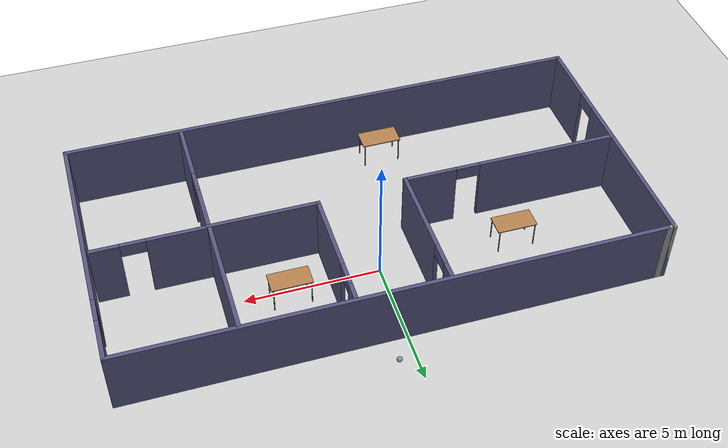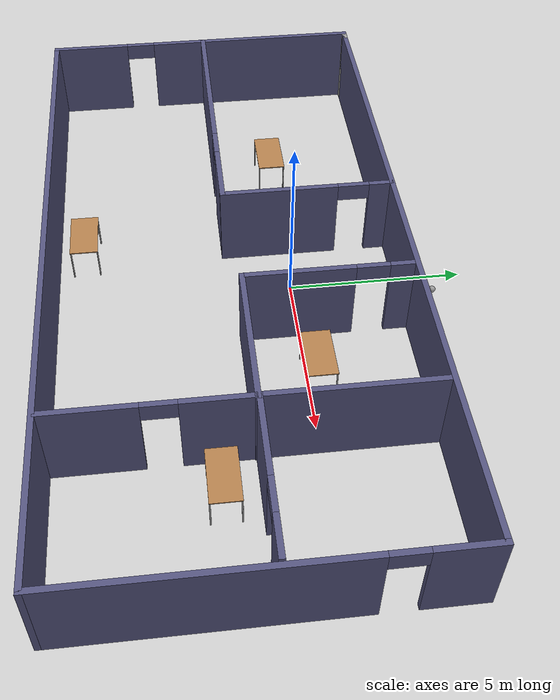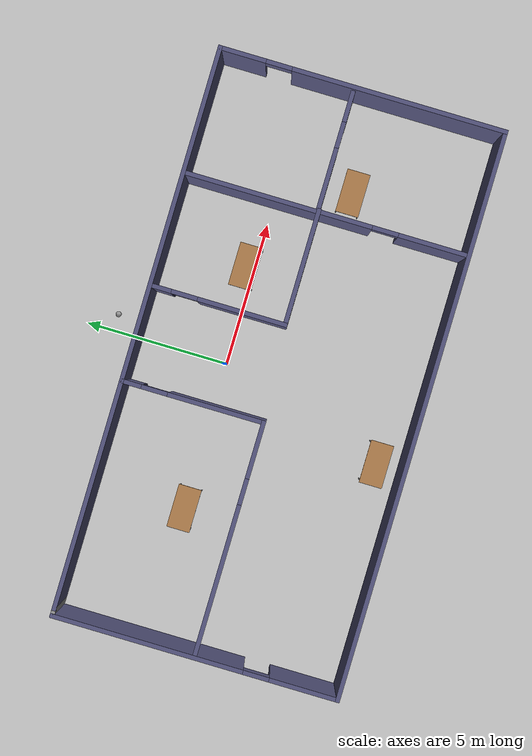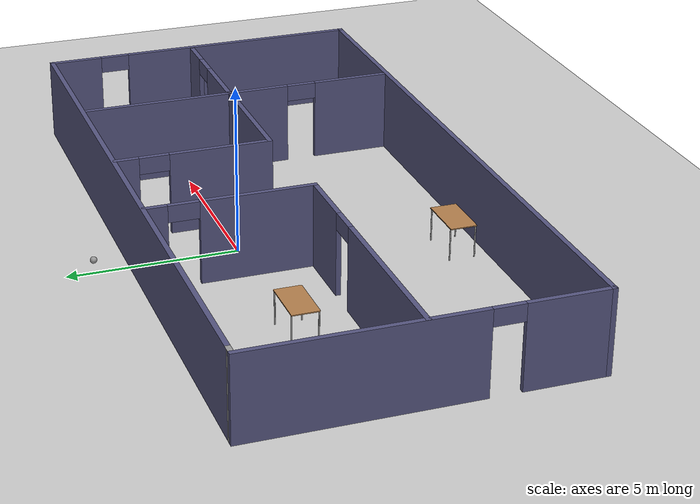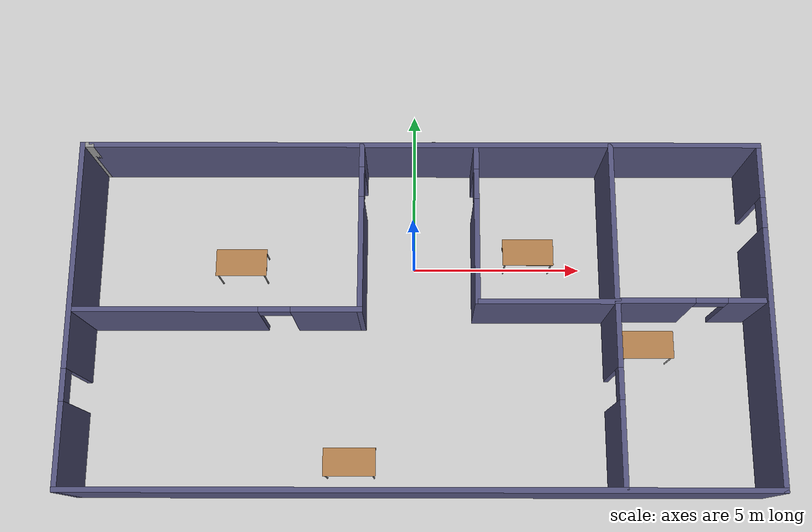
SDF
<sdf version="1.6">
 <world name="default">
  <light name="sun" type="directional">
   <pose>0 0 10 0 -0 0</pose>
   <diffuse>0.8 0.8 0.8 1</diffuse>
   <specular>0.2 0.2 0.2 1</specular>
   <attenuation>
    <range>1000</range>
    <constant>0.9</constant>
    <linear>0.01</linear>
    <quadratic>0.001</quadratic>
   </attenuation>
   <direction>-0.5 0.1 -0.9</direction>
  </light>
  <model name="ground_plane">
   <static>1</static>
   <link name="link">
    <collision name="collision">
     <geometry><plane><normal>0 0 1</normal><size>100 100</size></plane></geometry>
     <surface><friction><ode><mu>100</mu><mu2>50</mu2></ode></friction></surface>
    </collision>
    <visual name="visual">
     <cast_shadows>0</cast_shadows>
     <geometry><plane><normal>0 0 1</normal><size>100 100</size></plane></geometry>
     <material>
      <script><uri>file://media/materials/scripts/gazebo.material</uri><name>Gazebo/Grey</name></script>
     </material>
    </visual>
   </link>
  </model>
  <gravity>0 0 -9.8</gravity>
  <magnetic_field>6e-06 2.3e-05 -4.2e-05</magnetic_field>
  <atmosphere type="adiabatic"/>
  <physics name="default_physics" default="0" type="ode">
   <max_step_size>0.001</max_step_size>
   <real_time_factor>1</real_time_factor>
   <real_time_update_rate>1000</real_time_update_rate>
  </physics>
  <scene><ambient>0.4 0.4 0.4 1</ambient><background>0.7 0.7 0.7 1</background><shadows>1</shadows></scene>
  <spherical_coordinates>
   <surface_model>EARTH_WGS84</surface_model>
   <latitude_deg>0</latitude_deg>
   <longitude_deg>0</longitude_deg>
   <elevation>0</elevation>
   <heading_deg>0</heading_deg>
  </spherical_coordinates>
  <model name="Office">
   <pose>0.187413 -1.82641 0 0 -0 0</pose>
   <link name="Wall_17">
    <collision name="Wall_17_Collision">
     <geometry><box><size>19.5 0.15 2.5</size></box></geometry>
     <pose>0 0 1.25 0 -0 0</pose>
    </collision>
    <visual name="Wall_17_Visual">
     <pose>0 0 1.25 0 -0 0</pose>
     <geometry><box><size>19.5 0.15 2.5</size></box></geometry>
     <material>
      <script><uri>file://media/materials/scripts/gazebo.material</uri><name>Gazebo/Grey</name></script>
      <ambient>0.333333 0.333333 0.498039 1</ambient>
     </material>
     <meta><layer>0</layer></meta>
    </visual>
    <pose>0.125 4.925 0 0 -0 0</pose>
   </link>
   <link name="Wall_18">
    <pose>9.8 0 0 0 0 -1.5708</pose>
    <visual name="Wall_18_Visual_0">
     <pose>-4.16851 0 1.25 0 -0 0</pose>
     <geometry><box><size>1.66297 0.15 2.5</size></box></geometry>
     <material>
      <script><uri>file://media/materials/scripts/gazebo.material</uri><name>Gazebo/Grey</name></script>
      <ambient>0.333333 0.333333 0.498039 1</ambient>
     </material>
     <meta><layer>0</layer></meta>
    </visual>
    <collision name="Wall_18_Collision_0">
     <geometry><box><size>1.66297 0.15 2.5</size></box></geometry>
     <pose>-4.16851 0 1.25 0 -0 0</pose>
    </collision>
    <visual name="Wall_18_Visual_1">
     <pose>1.28149 0 1.25 0 -0 0</pose>
     <geometry><box><size>7.43703 0.15 2.5</size></box></geometry>
     <material>
      <script><uri>file://media/materials/scripts/gazebo.material</uri><name>Gazebo/Grey</name></script>
      <ambient>0.333333 0.333333 0.498039 1</ambient>
     </material>
     <meta><layer>0</layer></meta>
    </visual>
    <collision name="Wall_18_Collision_1">
     <geometry><box><size>7.43703 0.15 2.5</size></box></geometry>
     <pose>1.28149 0 1.25 0 -0 0</pose>
    </collision>
    <visual name="Wall_18_Visual_2">
     <pose>-2.88703 0 2.25 0 -0 0</pose>
     <geometry><box><size>0.9 0.15 0.5</size></box></geometry>
     <material>
      <script><uri>file://media/materials/scripts/gazebo.material</uri><name>Gazebo/Grey</name></script>
      <ambient>0.333333 0.333333 0.498039 1</ambient>
     </material>
     <meta><layer>0</layer></meta>
    </visual>
    <collision name="Wall_18_Collision_2">
     <geometry><box><size>0.9 0.15 0.5</size></box></geometry>
     <pose>-2.88703 0 2.25 0 -0 0</pose>
    </collision>
   </link>
   <link name="Wall_19">
    <collision name="Wall_19_Collision">
     <geometry><box><size>19.75 0.15 2.5</size></box></geometry>
     <pose>0 0 1.25 0 -0 0</pose>
    </collision>
    <visual name="Wall_19_Visual">
     <pose>0 0 1.25 0 -0 0</pose>
     <geometry><box><size>19.75 0.15 2.5</size></box></geometry>
     <material>
      <script><uri>file://media/materials/scripts/gazebo.material</uri><name>Gazebo/Grey</name></script>
      <ambient>0.333333 0.333333 0.498039 1</ambient>
     </material>
     <meta><layer>0</layer></meta>
    </visual>
    <pose>0 -4.925 0 0 -0 3.14159</pose>
   </link>
   <link name="Wall_20">
    <pose>-9.8 0 0 0 -0 1.5708</pose>
    <visual name="Wall_20_Visual_0">
     <pose>-3.77572 0 1.25 0 -0 0</pose>
     <geometry><box><size>2.44856 0.15 2.5</size></box></geometry>
     <material>
      <script><uri>file://media/materials/scripts/gazebo.material</uri><name>Gazebo/Grey</name></script>
      <ambient>0.333333 0.333333 0.498039 1</ambient>
     </material>
     <meta><layer>0</layer></meta>
    </visual>
    <collision name="Wall_20_Collision_0">
     <geometry><box><size>2.44856 0.15 2.5</size></box></geometry>
     <pose>-3.77572 0 1.25 0 -0 0</pose>
    </collision>
    <visual name="Wall_20_Visual_1">
     <pose>1.67428 0 1.25 0 -0 0</pose>
     <geometry><box><size>6.65144 0.15 2.5</size></box></geometry>
     <material>
      <script><uri>file://media/materials/scripts/gazebo.material</uri><name>Gazebo/Grey</name></script>
      <ambient>0.333333 0.333333 0.498039 1</ambient>
     </material>
     <meta><layer>0</layer></meta>
    </visual>
    <collision name="Wall_20_Collision_1">
     <geometry><box><size>6.65144 0.15 2.5</size></box></geometry>
     <pose>1.67428 0 1.25 0 -0 0</pose>
    </collision>
    <visual name="Wall_20_Visual_2">
     <pose>-2.10144 0 2.25 0 -0 0</pose>
     <geometry><box><size>0.9 0.15 0.5</size></box></geometry>
     <material>
      <script><uri>file://media/materials/scripts/gazebo.material</uri><name>Gazebo/Grey</name></script>
      <ambient>0.333333 0.333333 0.498039 1</ambient>
     </material>
     <meta><layer>0</layer></meta>
    </visual>
    <collision name="Wall_20_Collision_2">
     <geometry><box><size>0.9 0.15 0.5</size></box></geometry>
     <pose>-2.10144 0 2.25 0 -0 0</pose>
    </collision>
   </link>
   <link name="Wall_21">
    <collision name="Wall_21_Collision">
     <geometry><box><size>0.4 0.15 2.5</size></box></geometry>
     <pose>0 0 1.25 0 -0 0</pose>
    </collision>
    <visual name="Wall_21_Visual">
     <pose>0 0 1.25 0 -0 0</pose>
     <geometry><box><size>0.4 0.15 2.5</size></box></geometry>
     <material>
      <script><uri>file://media/materials/scripts/gazebo.material</uri><name>Gazebo/Grey</name></script>
      <ambient>1 1 1 1</ambient>
     </material>
     <meta><layer>0</layer></meta>
    </visual>
    <pose>-9.675 4.925 0 0 -0 0</pose>
   </link>
   <link name="Wall_23">
    <pose>-5.74334 0.027782 0 0 -0 0</pose>
    <visual name="Wall_23_Visual_0">
     <pose>-1.45325 0 1.25 0 -0 0</pose>
     <geometry><box><size>5.34349 0.15 2.5</size></box></geometry>
     <material>
      <script><uri>file://media/materials/scripts/gazebo.material</uri><name>Gazebo/Grey</name></script>
      <ambient>0.333333 0.333333 0.498039 1</ambient>
     </material>
     <meta><layer>0</layer></meta>
    </visual>
    <collision name="Wall_23_Collision_0">
     <geometry><box><size>5.34349 0.15 2.5</size></box></geometry>
     <pose>-1.45325 0 1.25 0 -0 0</pose>
    </collision>
    <visual name="Wall_23_Visual_1">
     <pose>3.12175 0 1.25 0 -0 0</pose>
     <geometry><box><size>2.00651 0.15 2.5</size></box></geometry>
     <material>
      <script><uri>file://media/materials/scripts/gazebo.material</uri><name>Gazebo/Grey</name></script>
      <ambient>0.333333 0.333333 0.498039 1</ambient>
     </material>
     <meta><layer>0</layer></meta>
    </visual>
    <collision name="Wall_23_Collision_1">
     <geometry><box><size>2.00651 0.15 2.5</size></box></geometry>
     <pose>3.12175 0 1.25 0 -0 0</pose>
    </collision>
    <visual name="Wall_23_Visual_2">
     <pose>1.66849 0 2.25 0 -0 0</pose>
     <geometry><box><size>0.9 0.15 0.5</size></box></geometry>
     <material>
      <script><uri>file://media/materials/scripts/gazebo.material</uri><name>Gazebo/Grey</name></script>
      <ambient>0.333333 0.333333 0.498039 1</ambient>
     </material>
     <meta><layer>0</layer></meta>
    </visual>
    <collision name="Wall_23_Collision_2">
     <geometry><box><size>0.9 0.15 0.5</size></box></geometry>
     <pose>1.66849 0 2.25 0 -0 0</pose>
    </collision>
   </link>
   <link name="Wall_24">
    <pose>-1.69334 2.45278 0 0 -0 1.5708</pose>
    <visual name="Wall_24_Visual_0">
     <pose>-0.801615 0 1.25 0 -0 0</pose>
     <geometry><box><size>3.39677 0.15 2.5</size></box></geometry>
     <material>
      <script><uri>file://media/materials/scripts/gazebo.material</uri><name>Gazebo/Grey</name></script>
      <ambient>0.333333 0.333333 0.498039 1</ambient>
     </material>
     <meta><layer>0</layer></meta>
    </visual>
    <collision name="Wall_24_Collision_0">
     <geometry><box><size>3.39677 0.15 2.5</size></box></geometry>
     <pose>-0.801615 0 1.25 0 -0 0</pose>
    </collision>
    <visual name="Wall_24_Visual_1">
     <pose>2.14839 0 1.25 0 -0 0</pose>
     <geometry><box><size>0.70323 0.15 2.5</size></box></geometry>
     <material>
      <script><uri>file://media/materials/scripts/gazebo.material</uri><name>Gazebo/Grey</name></script>
      <ambient>0.333333 0.333333 0.498039 1</ambient>
     </material>
     <meta><layer>0</layer></meta>
    </visual>
    <collision name="Wall_24_Collision_1">
     <geometry><box><size>0.70323 0.15 2.5</size></box></geometry>
     <pose>2.14839 0 1.25 0 -0 0</pose>
    </collision>
    <visual name="Wall_24_Visual_2">
     <pose>1.34677 0 2.25 0 -0 0</pose>
     <geometry><box><size>0.9 0.15 0.5</size></box></geometry>
     <material>
      <script><uri>file://media/materials/scripts/gazebo.material</uri><name>Gazebo/Grey</name></script>
      <ambient>0.333333 0.333333 0.498039 1</ambient>
     </material>
     <meta><layer>0</layer></meta>
    </visual>
    <collision name="Wall_24_Collision_2">
     <geometry><box><size>0.9 0.15 0.5</size></box></geometry>
     <pose>1.34677 0 2.25 0 -0 0</pose>
    </collision>
   </link>
   <link name="Wall_26">
    <pose>1.61322 2.56417 0 0 0 -1.5708</pose>
    <visual name="Wall_26_Visual_0">
     <pose>-1.99978 0 1.25 0 -0 0</pose>
     <geometry><box><size>0.750447 0.15 2.5</size></box></geometry>
     <material>
      <script><uri>file://media/materials/scripts/gazebo.material</uri><name>Gazebo/Grey</name></script>
      <ambient>0.333333 0.333333 0.498039 1</ambient>
     </material>
     <meta><layer>0</layer></meta>
    </visual>
    <collision name="Wall_26_Collision_0">
     <geometry><box><size>0.750447 0.15 2.5</size></box></geometry>
     <pose>-1.99978 0 1.25 0 -0 0</pose>
    </collision>
    <visual name="Wall_26_Visual_1">
     <pose>0.825224 0 1.25 0 -0 0</pose>
     <geometry><box><size>3.09955 0.15 2.5</size></box></geometry>
     <material>
      <script><uri>file://media/materials/scripts/gazebo.material</uri><name>Gazebo/Grey</name></script>
      <ambient>0.333333 0.333333 0.498039 1</ambient>
     </material>
     <meta><layer>0</layer></meta>
    </visual>
    <collision name="Wall_26_Collision_1">
     <geometry><box><size>3.09955 0.15 2.5</size></box></geometry>
     <pose>0.825224 0 1.25 0 -0 0</pose>
    </collision>
    <visual name="Wall_26_Visual_2">
     <pose>-1.17455 0 2.25 0 -0 0</pose>
     <geometry><box><size>0.9 0.15 0.5</size></box></geometry>
     <material>
      <script><uri>file://media/materials/scripts/gazebo.material</uri><name>Gazebo/Grey</name></script>
      <ambient>0.333333 0.333333 0.498039 1</ambient>
     </material>
     <meta><layer>0</layer></meta>
    </visual>
    <collision name="Wall_26_Collision_2">
     <geometry><box><size>0.9 0.15 0.5</size></box></geometry>
     <pose>-1.17455 0 2.25 0 -0 0</pose>
    </collision>
   </link>
   <link name="Wall_27">
    <collision name="Wall_27_Collision">
     <geometry><box><size>4.08748 0.15 2.5</size></box></geometry>
     <pose>0 0 1.25 0 -0 0</pose>
    </collision>
    <visual name="Wall_27_Visual">
     <pose>0 0 1.25 0 -0 0</pose>
     <geometry><box><size>4.08748 0.15 2.5</size></box></geometry>
     <material>
      <script><uri>file://media/materials/scripts/gazebo.material</uri><name>Gazebo/Grey</name></script>
      <ambient>0.333333 0.333333 0.498039 1</ambient>
     </material>
     <meta><layer>0</layer></meta>
    </visual>
    <pose>3.58196 0.264165 0 0 -0 0</pose>
   </link>
   <link name="Wall_28">
    <pose>5.52028 -2.28584 0 0 0 -1.5708</pose>
    <visual name="Wall_28_Visual_0">
     <pose>-1.66011 0 1.25 0 -0 0</pose>
     <geometry><box><size>1.92977 0.15 2.5</size></box></geometry>
     <material>
      <script><uri>file://media/materials/scripts/gazebo.material</uri><name>Gazebo/Grey</name></script>
      <ambient>0.333333 0.333333 0.498039 1</ambient>
     </material>
     <meta><layer>0</layer></meta>
    </visual>
    <collision name="Wall_28_Collision_0">
     <geometry><box><size>1.92977 0.15 2.5</size></box></geometry>
     <pose>-1.66011 0 1.25 0 -0 0</pose>
    </collision>
    <visual name="Wall_28_Visual_1">
     <pose>1.41489 0 1.25 0 -0 0</pose>
     <geometry><box><size>2.42023 0.15 2.5</size></box></geometry>
     <material>
      <script><uri>file://media/materials/scripts/gazebo.material</uri><name>Gazebo/Grey</name></script>
      <ambient>0.333333 0.333333 0.498039 1</ambient>
     </material>
     <meta><layer>0</layer></meta>
    </visual>
    <collision name="Wall_28_Collision_1">
     <geometry><box><size>2.42023 0.15 2.5</size></box></geometry>
     <pose>1.41489 0 1.25 0 -0 0</pose>
    </collision>
    <visual name="Wall_28_Visual_2">
     <pose>-0.245227 0 2.25 0 -0 0</pose>
     <geometry><box><size>0.9 0.15 0.5</size></box></geometry>
     <material>
      <script><uri>file://media/materials/scripts/gazebo.material</uri><name>Gazebo/Grey</name></script>
      <ambient>0.333333 0.333333 0.498039 1</ambient>
     </material>
     <meta><layer>0</layer></meta>
    </visual>
    <collision name="Wall_28_Collision_2">
     <geometry><box><size>0.9 0.15 0.5</size></box></geometry>
     <pose>-0.245227 0 2.25 0 -0 0</pose>
    </collision>
   </link>
   <link name="Wall_32">
    <collision name="Wall_32_Collision">
     <geometry><box><size>4.75 0.15 2.5</size></box></geometry>
     <pose>0 0 1.25 0 -0 0</pose>
    </collision>
    <visual name="Wall_32_Visual">
     <pose>0 0 1.25 0 -0 0</pose>
     <geometry><box><size>4.75 0.15 2.5</size></box></geometry>
     <material>
      <script><uri>file://media/materials/scripts/gazebo.material</uri><name>Gazebo/Grey</name></script>
      <ambient>0.333333 0.333333 0.498039 1</ambient>
     </material>
     <meta><layer>0</layer></meta>
    </visual>
    <pose>5.50666 2.59458 0 0 0 -1.5708</pose>
   </link>
   <link name="Wall_33">
    <pose>7.55666 0.294583 0 0 -0 0</pose>
    <visual name="Wall_33_Visual_0">
     <pose>-0.989339 0 1.25 0 -0 0</pose>
     <geometry><box><size>2.27132 0.15 2.5</size></box></geometry>
     <material>
      <script><uri>file://media/materials/scripts/gazebo.material</uri><name>Gazebo/Grey</name></script>
      <ambient>0.333333 0.333333 0.498039 1</ambient>
     </material>
     <meta><layer>0</layer></meta>
    </visual>
    <collision name="Wall_33_Collision_0">
     <geometry><box><size>2.27132 0.15 2.5</size></box></geometry>
     <pose>-0.989339 0 1.25 0 -0 0</pose>
    </collision>
    <visual name="Wall_33_Visual_1">
     <pose>1.58566 0 1.25 0 -0 0</pose>
     <geometry><box><size>1.07868 0.15 2.5</size></box></geometry>
     <material>
      <script><uri>file://media/materials/scripts/gazebo.material</uri><name>Gazebo/Grey</name></script>
      <ambient>0.333333 0.333333 0.498039 1</ambient>
     </material>
     <meta><layer>0</layer></meta>
    </visual>
    <collision name="Wall_33_Collision_1">
     <geometry><box><size>1.07868 0.15 2.5</size></box></geometry>
     <pose>1.58566 0 1.25 0 -0 0</pose>
    </collision>
    <visual name="Wall_33_Visual_2">
     <pose>0.596323 0 2.25 0 -0 0</pose>
     <geometry><box><size>0.9 0.15 0.5</size></box></geometry>
     <material>
      <script><uri>file://media/materials/scripts/gazebo.material</uri><name>Gazebo/Grey</name></script>
      <ambient>0.333333 0.333333 0.498039 1</ambient>
     </material>
     <meta><layer>0</layer></meta>
    </visual>
    <collision name="Wall_33_Collision_2">
     <geometry><box><size>0.9 0.15 0.5</size></box></geometry>
     <pose>0.596323 0 2.25 0 -0 0</pose>
    </collision>
   </link>
   <static>1</static>
  </model>
  <model name="table">
   <static>1</static>
   <link name="link">
    <collision name="surface">
     <pose>0 0 1 0 -0 0</pose>
     <geometry><box><size>1.5 0.8 0.03</size></box></geometry>
     <surface><friction><ode><mu>0.6</mu><mu2>0.6</mu2></ode></friction></surface>
    </collision>
    <visual name="visual1">
     <pose>0 0 1 0 -0 0</pose>
     <geometry><box><size>1.5 0.8 0.03</size></box></geometry>
     <material>
      <script><uri>file://media/materials/scripts/gazebo.material</uri><name>Gazebo/Wood</name></script>
     </material>
    </visual>
    <collision name="front_left_leg">
     <pose>0.68 0.38 0.5 0 -0 0</pose>
     <geometry><cylinder><radius>0.02</radius><length>1</length></cylinder></geometry>
    </collision>
    <visual name="front_left_leg">
     <pose>0.68 0.38 0.5 0 -0 0</pose>
     <geometry><cylinder><radius>0.02</radius><length>1</length></cylinder></geometry>
     <material>
      <script><uri>file://media/materials/scripts/gazebo.material</uri><name>Gazebo/Grey</name></script>
     </material>
    </visual>
    <collision name="front_right_leg">
     <pose>0.68 -0.38 0.5 0 -0 0</pose>
     <geometry><cylinder><radius>0.02</radius><length>1</length></cylinder></geometry>
    </collision>
    <visual name="front_right_leg">
     <pose>0.68 -0.38 0.5 0 -0 0</pose>
     <geometry><cylinder><radius>0.02</radius><length>1</length></cylinder></geometry>
     <material>
      <script><uri>file://media/materials/scripts/gazebo.material</uri><name>Gazebo/Grey</name></script>
     </material>
    </visual>
    <collision name="back_right_leg">
     <pose>-0.68 -0.38 0.5 0 -0 0</pose>
     <geometry><cylinder><radius>0.02</radius><length>1</length></cylinder></geometry>
    </collision>
    <visual name="back_right_leg">
     <pose>-0.68 -0.38 0.5 0 -0 0</pose>
     <geometry><cylinder><radius>0.02</radius><length>1</length></cylinder></geometry>
     <material>
      <script><uri>file://media/materials/scripts/gazebo.material</uri><name>Gazebo/Grey</name></script>
     </material>
    </visual>
    <collision name="back_left_leg">
     <pose>-0.68 0.38 0.5 0 -0 0</pose>
     <geometry><cylinder><radius>0.02</radius><length>1</length></cylinder></geometry>
    </collision>
    <visual name="back_left_leg">
     <pose>-0.68 0.38 0.5 0 -0 0</pose>
     <geometry><cylinder><radius>0.02</radius><length>1</length></cylinder></geometry>
     <material>
      <script><uri>file://media/materials/scripts/gazebo.material</uri><name>Gazebo/Grey</name></script>
     </material>
    </visual>
   </link>
   <pose>6.79046 -2.49364 0 0 -0 0</pose>
  </model>
  <model name="table_0">
   <static>1</static>
   <link name="link">
    <collision name="surface">
     <pose>0 0 1 0 -0 0</pose>
     <geometry><box><size>1.5 0.8 0.03</size></box></geometry>
     <surface><friction><ode><mu>0.6</mu><mu2>0.6</mu2></ode></friction></surface>
    </collision>
    <visual name="visual1">
     <pose>0 0 1 0 -0 0</pose>
     <geometry><box><size>1.5 0.8 0.03</size></box></geometry>
     <material>
      <script><uri>file://media/materials/scripts/gazebo.material</uri><name>Gazebo/Wood</name></script>
     </material>
    </visual>
    <collision name="front_left_leg">
     <pose>0.68 0.38 0.5 0 -0 0</pose>
     <geometry><cylinder><radius>0.02</radius><length>1</length></cylinder></geometry>
    </collision>
    <visual name="front_left_leg">
     <pose>0.68 0.38 0.5 0 -0 0</pose>
     <geometry><cylinder><radius>0.02</radius><length>1</length></cylinder></geometry>
     <material>
      <script><uri>file://media/materials/scripts/gazebo.material</uri><name>Gazebo/Grey</name></script>
     </material>
    </visual>
    <collision name="front_right_leg">
     <pose>0.68 -0.38 0.5 0 -0 0</pose>
     <geometry><cylinder><radius>0.02</radius><length>1</length></cylinder></geometry>
    </collision>
    <visual name="front_right_leg">
     <pose>0.68 -0.38 0.5 0 -0 0</pose>
     <geometry><cylinder><radius>0.02</radius><length>1</length></cylinder></geometry>
     <material>
      <script><uri>file://media/materials/scripts/gazebo.material</uri><name>Gazebo/Grey</name></script>
     </material>
    </visual>
    <collision name="back_right_leg">
     <pose>-0.68 -0.38 0.5 0 -0 0</pose>
     <geometry><cylinder><radius>0.02</radius><length>1</length></cylinder></geometry>
    </collision>
    <visual name="back_right_leg">
     <pose>-0.68 -0.38 0.5 0 -0 0</pose>
     <geometry><cylinder><radius>0.02</radius><length>1</length></cylinder></geometry>
     <material>
      <script><uri>file://media/materials/scripts/gazebo.material</uri><name>Gazebo/Grey</name></script>
     </material>
    </visual>
    <collision name="back_left_leg">
     <pose>-0.68 0.38 0.5 0 -0 0</pose>
     <geometry><cylinder><radius>0.02</radius><length>1</length></cylinder></geometry>
    </collision>
    <visual name="back_left_leg">
     <pose>-0.68 0.38 0.5 0 -0 0</pose>
     <geometry><cylinder><radius>0.02</radius><length>1</length></cylinder></geometry>
     <material>
      <script><uri>file://media/materials/scripts/gazebo.material</uri><name>Gazebo/Grey</name></script>
     </material>
    </visual>
   </link>
   <pose>-1.81753 -5.87575 0 0 -0 0</pose>
  </model>
  <model name="table_1">
   <static>1</static>
   <link name="link">
    <collision name="surface">
     <pose>0 0 1 0 -0 0</pose>
     <geometry><box><size>1.5 0.8 0.03</size></box></geometry>
     <surface><friction><ode><mu>0.6</mu><mu2>0.6</mu2></ode></friction></surface>
    </collision>
    <visual name="visual1">
     <pose>0 0 1 0 -0 0</pose>
     <geometry><box><size>1.5 0.8 0.03</size></box></geometry>
     <material>
      <script><uri>file://media/materials/scripts/gazebo.material</uri><name>Gazebo/Wood</name></script>
     </material>
    </visual>
    <collision name="front_left_leg">
     <pose>0.68 0.38 0.5 0 -0 0</pose>
     <geometry><cylinder><radius>0.02</radius><length>1</length></cylinder></geometry>
    </collision>
    <visual name="front_left_leg">
     <pose>0.68 0.38 0.5 0 -0 0</pose>
     <geometry><cylinder><radius>0.02</radius><length>1</length></cylinder></geometry>
     <material>
      <script><uri>file://media/materials/scripts/gazebo.material</uri><name>Gazebo/Grey</name></script>
     </material>
    </visual>
    <collision name="front_right_leg">
     <pose>0.68 -0.38 0.5 0 -0 0</pose>
     <geometry><cylinder><radius>0.02</radius><length>1</length></cylinder></geometry>
    </collision>
    <visual name="front_right_leg">
     <pose>0.68 -0.38 0.5 0 -0 0</pose>
     <geometry><cylinder><radius>0.02</radius><length>1</length></cylinder></geometry>
     <material>
      <script><uri>file://media/materials/scripts/gazebo.material</uri><name>Gazebo/Grey</name></script>
     </material>
    </visual>
    <collision name="back_right_leg">
     <pose>-0.68 -0.38 0.5 0 -0 0</pose>
     <geometry><cylinder><radius>0.02</radius><length>1</length></cylinder></geometry>
    </collision>
    <visual name="back_right_leg">
     <pose>-0.68 -0.38 0.5 0 -0 0</pose>
     <geometry><cylinder><radius>0.02</radius><length>1</length></cylinder></geometry>
     <material>
      <script><uri>file://media/materials/scripts/gazebo.material</uri><name>Gazebo/Grey</name></script>
     </material>
    </visual>
    <collision name="back_left_leg">
     <pose>-0.68 0.38 0.5 0 -0 0</pose>
     <geometry><cylinder><radius>0.02</radius><length>1</length></cylinder></geometry>
    </collision>
    <visual name="back_left_leg">
     <pose>-0.68 0.38 0.5 0 -0 0</pose>
     <geometry><cylinder><radius>0.02</radius><length>1</length></cylinder></geometry>
     <material>
      <script><uri>file://media/materials/scripts/gazebo.material</uri><name>Gazebo/Grey</name></script>
     </material>
    </visual>
   </link>
   <pose>3.37411 0.292137 0 0 -0 0</pose>
  </model>
  <model name="table_2">
   <static>1</static>
   <link name="link">
    <collision name="surface">
     <pose>0 0 1 0 -0 0</pose>
     <geometry><box><size>1.5 0.8 0.03</size></box></geometry>
     <surface><friction><ode><mu>0.6</mu><mu2>0.6</mu2></ode></friction></surface>
    </collision>
    <visual name="visual1">
     <pose>0 0 1 0 -0 0</pose>
     <geometry><box><size>1.5 0.8 0.03</size></box></geometry>
     <material>
      <script><uri>file://media/materials/scripts/gazebo.material</uri><name>Gazebo/Wood</name></script>
     </material>
    </visual>
    <collision name="front_left_leg">
     <pose>0.68 0.38 0.5 0 -0 0</pose>
     <geometry><cylinder><radius>0.02</radius><length>1</length></cylinder></geometry>
    </collision>
    <visual name="front_left_leg">
     <pose>0.68 0.38 0.5 0 -0 0</pose>
     <geometry><cylinder><radius>0.02</radius><length>1</length></cylinder></geometry>
     <material>
      <script><uri>file://media/materials/scripts/gazebo.material</uri><name>Gazebo/Grey</name></script>
     </material>
    </visual>
    <collision name="front_right_leg">
     <pose>0.68 -0.38 0.5 0 -0 0</pose>
     <geometry><cylinder><radius>0.02</radius><length>1</length></cylinder></geometry>
    </collision>
    <visual name="front_right_leg">
     <pose>0.68 -0.38 0.5 0 -0 0</pose>
     <geometry><cylinder><radius>0.02</radius><length>1</length></cylinder></geometry>
     <material>
      <script><uri>file://media/materials/scripts/gazebo.material</uri><name>Gazebo/Grey</name></script>
     </material>
    </visual>
    <collision name="back_right_leg">
     <pose>-0.68 -0.38 0.5 0 -0 0</pose>
     <geometry><cylinder><radius>0.02</radius><length>1</length></cylinder></geometry>
    </collision>
    <visual name="back_right_leg">
     <pose>-0.68 -0.38 0.5 0 -0 0</pose>
     <geometry><cylinder><radius>0.02</radius><length>1</length></cylinder></geometry>
     <material>
      <script><uri>file://media/materials/scripts/gazebo.material</uri><name>Gazebo/Grey</name></script>
     </material>
    </visual>
    <collision name="back_left_leg">
     <pose>-0.68 0.38 0.5 0 -0 0</pose>
     <geometry><cylinder><radius>0.02</radius><length>1</length></cylinder></geometry>
    </collision>
    <visual name="back_left_leg">
     <pose>-0.68 0.38 0.5 0 -0 0</pose>
     <geometry><cylinder><radius>0.02</radius><length>1</length></cylinder></geometry>
     <material>
      <script><uri>file://media/materials/scripts/gazebo.material</uri><name>Gazebo/Grey</name></script>
     </material>
    </visual>
   </link>
   <pose>-5.1055 -0.033401 0 0 -0 0</pose>
  </model>
  <model name="WhiteBall">
   <link name="link_0">
    <inertial>
     <mass>1</mass>
     <inertia><ixx>0.1</ixx><ixy>0</ixy><ixz>0</ixz><iyy>0.1</iyy><iyz>0</iyz><izz>0.1</izz></inertia>
    </inertial>
    <visual name="visual">
     <geometry><sphere><radius>0.1</radius></sphere></geometry>
     <material>
      <lighting>1</lighting>
      <script><uri>file://media/materials/scripts/gazebo.material</uri><name>Gazebo/Grey</name></script>
      <shader type="pixel"><normal_map>__default__</normal_map></shader>
      <ambient>1 1 1 1</ambient>
      <diffuse>1 1 1 1</diffuse>
      <specular>1 1 1 1</specular>
      <emissive>1 1 1 1</emissive>
     </material>
    </visual>
    <collision name="collision">
     <geometry><sphere><radius>0.1</radius></sphere></geometry>
     <surface>
      <friction>
       <ode><mu>1</mu><mu2>1</mu2><fdir1>0 0 0</fdir1><slip1>0</slip1><slip2>0</slip2></ode>
       <torsional>
        <coefficient>1</coefficient>
        <patch_radius>0</patch_radius>
        <surface_radius>0</surface_radius>
        <use_patch_radius>1</use_patch_radius>
        <ode><slip>0</slip></ode>
       </torsional>
      </friction>
      <bounce><restitution_coefficient>0</restitution_coefficient><threshold>1e+06</threshold></bounce>
      <contact>
       <collide_without_contact>0</collide_without_contact>
       <collide_without_contact_bitmask>1</collide_without_contact_bitmask>
       <collide_bitmask>1</collide_bitmask>
       <ode>
        <soft_cfm>0</soft_cfm>
        <soft_erp>0.2</soft_erp>
        <kp>1e+13</kp>
        <kd>1</kd>
        <max_vel>0.01</max_vel>
        <min_depth>0</min_depth>
       </ode>
       <bullet>
        <split_impulse>1</split_impulse>
        <split_impulse_penetration_threshold>-0.01</split_impulse_penetration_threshold>
        <soft_cfm>0</soft_cfm>
        <soft_erp>0.2</soft_erp>
        <kp>1e+13</kp>
        <kd>1</kd>
       </bullet>
      </contact>
     </surface>
    </collision>
   </link>
   <static>0</static>
   <pose>0.595595 4.0654 0.1 0 -0 0</pose>
  </model>
 </world>
</sdf>
